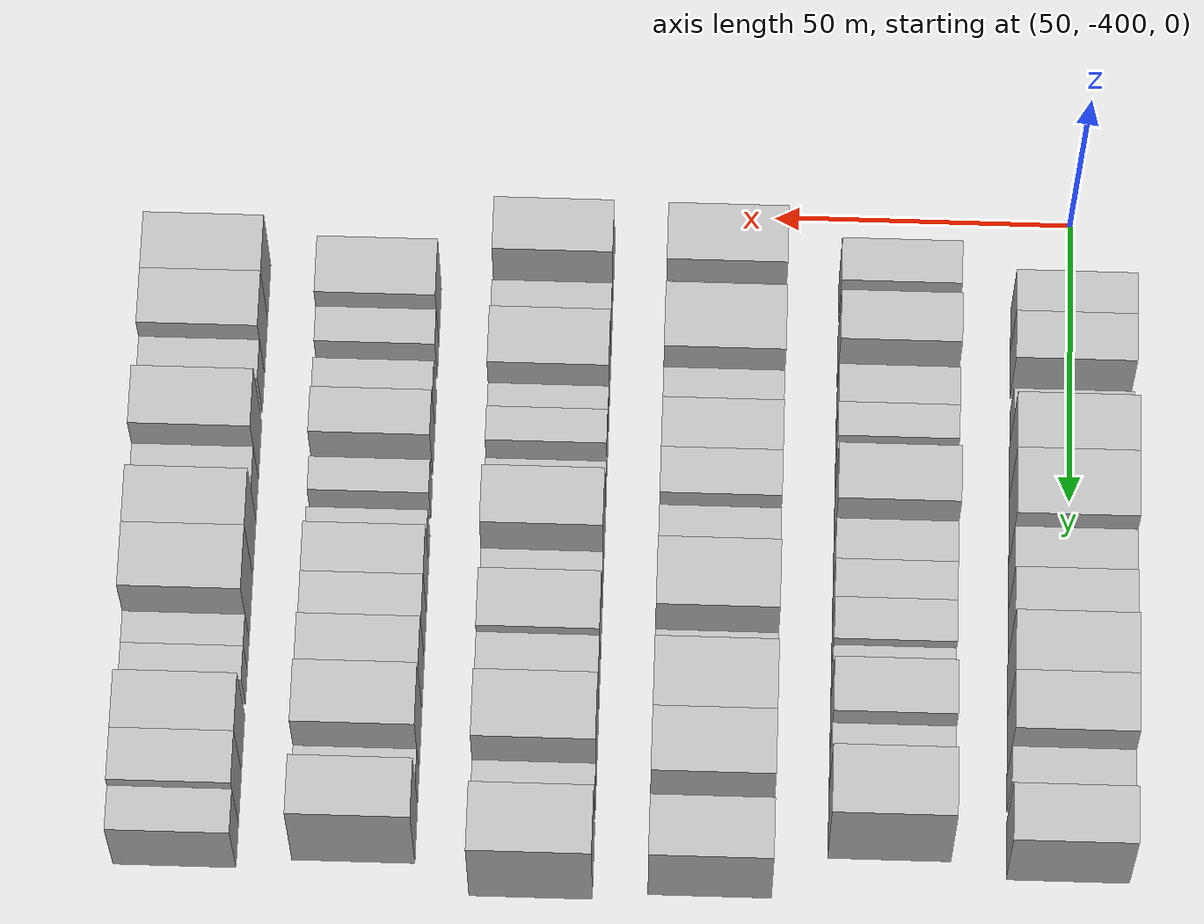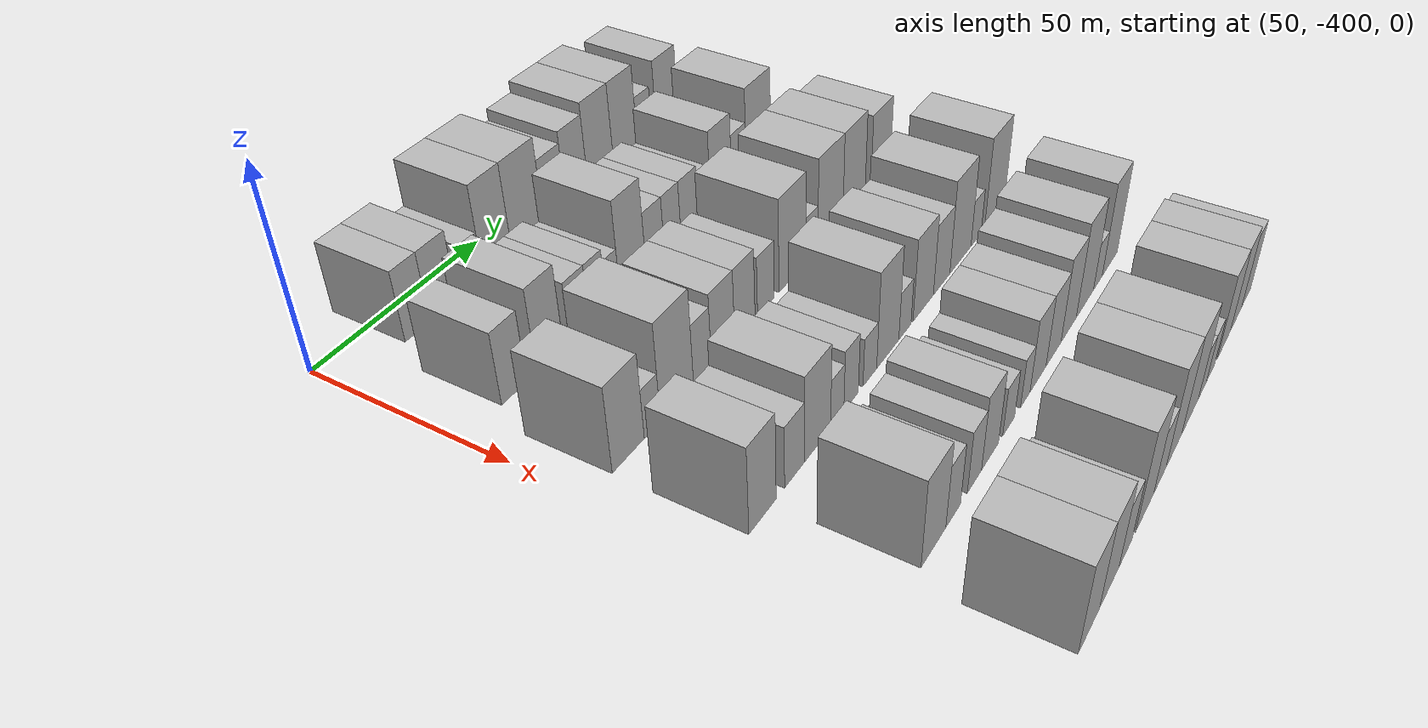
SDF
<sdf version="1.6">
 <world name="default">
  <model name="building_15">
   <static>1</static>
   <pose>50.0000 -380.3557 0 0.000000 0.000000 0.000000</pose>
   <link name="link">
    <pose>0 0 9.00 0 0 0</pose>
    <collision name="collision"><geometry><box><size>20.0000 7.3531 18.0000</size></box></geometry></collision>
    <visual name="visual">
     <cast_shadows>0</cast_shadows>
     <geometry><box><size>20.0000 7.3531 18.0000</size></box></geometry>
     <material>
      <script>
       <uri>model://HANNAS_wall/materials/scripts</uri>
       <uri>model://HANNAS_wall/materials/textures</uri>
       <name>vrc/HANNAS_wall</name>
      </script>
     </material>
    </visual>
   </link>
  </model>
  <model name="building_16">
   <static>1</static>
   <pose>50.0000 -372.4623 0 0.000000 0.000000 0.000000</pose>
   <link name="link">
    <pose>0 0 9.00 0 0 0</pose>
    <collision name="collision"><geometry><box><size>20.0000 8.4337 18.0000</size></box></geometry></collision>
    <visual name="visual">
     <cast_shadows>0</cast_shadows>
     <geometry><box><size>20.0000 8.4337 18.0000</size></box></geometry>
     <material>
      <script>
       <uri>model://HANNAS_wall/materials/scripts</uri>
       <uri>model://HANNAS_wall/materials/textures</uri>
       <name>vrc/HANNAS_wall</name>
      </script>
     </material>
    </visual>
   </link>
  </model>
  <model name="building_17">
   <static>1</static>
   <pose>50.0000 -362.4733 0 0.000000 0.000000 0.000000</pose>
   <link name="link">
    <pose>0 0 6.00 0 0 0</pose>
    <collision name="collision"><geometry><box><size>20.0000 5.5442 12.0000</size></box></geometry></collision>
    <visual name="visual">
     <cast_shadows>0</cast_shadows>
     <geometry><box><size>20.0000 5.5442 12.0000</size></box></geometry>
     <material>
      <script>
       <uri>model://HANNAS_wall/materials/scripts</uri>
       <uri>model://HANNAS_wall/materials/textures</uri>
       <name>vrc/HANNAS_wall</name>
      </script>
     </material>
    </visual>
   </link>
  </model>
  <model name="building_18">
   <static>1</static>
   <pose>50.0000 -354.8416 0 0.000000 0.000000 0.000000</pose>
   <link name="link">
    <pose>0 0 12.00 0 0 0</pose>
    <collision name="collision"><geometry><box><size>20.0000 9.7191 24.0000</size></box></geometry></collision>
    <visual name="visual">
     <cast_shadows>0</cast_shadows>
     <geometry><box><size>20.0000 9.7191 24.0000</size></box></geometry>
     <material>
      <script>
       <uri>model://HANNAS_wall/materials/scripts</uri>
       <uri>model://HANNAS_wall/materials/textures</uri>
       <name>vrc/HANNAS_wall</name>
      </script>
     </material>
    </visual>
   </link>
  </model>
  <model name="building_19">
   <static>1</static>
   <pose>50.0000 -344.2495 0 0.000000 0.000000 0.000000</pose>
   <link name="link">
    <pose>0 0 12.00 0 0 0</pose>
    <collision name="collision"><geometry><box><size>20.0000 11.4651 24.0000</size></box></geometry></collision>
    <visual name="visual">
     <cast_shadows>0</cast_shadows>
     <geometry><box><size>20.0000 11.4651 24.0000</size></box></geometry>
     <material>
      <script>
       <uri>model://HANNAS_wall/materials/scripts</uri>
       <uri>model://HANNAS_wall/materials/textures</uri>
       <name>vrc/HANNAS_wall</name>
      </script>
     </material>
    </visual>
   </link>
  </model>
  <model name="building_20">
   <static>1</static>
   <pose>50.0000 -334.4383 0 0.000000 0.000000 0.000000</pose>
   <link name="link">
    <pose>0 0 9.00 0 0 0</pose>
    <collision name="collision"><geometry><box><size>20.0000 8.1575 18.0000</size></box></geometry></collision>
    <visual name="visual">
     <cast_shadows>0</cast_shadows>
     <geometry><box><size>20.0000 8.1575 18.0000</size></box></geometry>
     <material>
      <script>
       <uri>model://HANNAS_wall/materials/scripts</uri>
       <uri>model://HANNAS_wall/materials/textures</uri>
       <name>vrc/HANNAS_wall</name>
      </script>
     </material>
    </visual>
   </link>
  </model>
  <model name="building_21">
   <static>1</static>
   <pose>50.0000 -326.1122 0 0.000000 0.000000 0.000000</pose>
   <link name="link">
    <pose>0 0 10.50 0 0 0</pose>
    <collision name="collision"><geometry><box><size>20.0000 8.4947 21.0000</size></box></geometry></collision>
    <visual name="visual">
     <cast_shadows>0</cast_shadows>
     <geometry><box><size>20.0000 8.4947 21.0000</size></box></geometry>
     <material>
      <script>
       <uri>model://HANNAS_wall/materials/scripts</uri>
       <uri>model://HANNAS_wall/materials/textures</uri>
       <name>vrc/HANNAS_wall</name>
      </script>
     </material>
    </visual>
   </link>
  </model>
  <model name="building_22">
   <static>1</static>
   <pose>50.0000 -316.7269 0 0.000000 0.000000 0.000000</pose>
   <link name="link">
    <pose>0 0 12.00 0 0 0</pose>
    <collision name="collision"><geometry><box><size>20.0000 10.2759 24.0000</size></box></geometry></collision>
    <visual name="visual">
     <cast_shadows>0</cast_shadows>
     <geometry><box><size>20.0000 10.2759 24.0000</size></box></geometry>
     <material>
      <script>
       <uri>model://HANNAS_wall/materials/scripts</uri>
       <uri>model://HANNAS_wall/materials/textures</uri>
       <name>vrc/HANNAS_wall</name>
      </script>
     </material>
    </visual>
   </link>
  </model>
  <model name="building_23">
   <static>1</static>
   <pose>50.0000 -306.6334 0 0.000000 0.000000 0.000000</pose>
   <link name="link">
    <pose>0 0 12.00 0 0 0</pose>
    <collision name="collision"><geometry><box><size>20.0000 9.9111 24.0000</size></box></geometry></collision>
    <visual name="visual">
     <cast_shadows>0</cast_shadows>
     <geometry><box><size>20.0000 9.9111 24.0000</size></box></geometry>
     <material>
      <script>
       <uri>model://HANNAS_wall/materials/scripts</uri>
       <uri>model://HANNAS_wall/materials/textures</uri>
       <name>vrc/HANNAS_wall</name>
      </script>
     </material>
    </visual>
   </link>
  </model>
  <model name="building_24">
   <static>1</static>
   <pose>50.0000 -298.5820 0 0.000000 0.000000 0.000000</pose>
   <link name="link">
    <pose>0 0 7.50 0 0 0</pose>
    <collision name="collision"><geometry><box><size>20.0000 6.1917 15.0000</size></box></geometry></collision>
    <visual name="visual">
     <cast_shadows>0</cast_shadows>
     <geometry><box><size>20.0000 6.1917 15.0000</size></box></geometry>
     <material>
      <script>
       <uri>model://HANNAS_wall/materials/scripts</uri>
       <uri>model://HANNAS_wall/materials/textures</uri>
       <name>vrc/HANNAS_wall</name>
      </script>
     </material>
    </visual>
   </link>
  </model>
  <model name="building_25">
   <static>1</static>
   <pose>50.0000 -288.6683 0 0.000000 0.000000 0.000000</pose>
   <link name="link">
    <pose>0 0 10.50 0 0 0</pose>
    <collision name="collision"><geometry><box><size>20.0000 9.6357 21.0000</size></box></geometry></collision>
    <visual name="visual">
     <cast_shadows>0</cast_shadows>
     <geometry><box><size>20.0000 9.6357 21.0000</size></box></geometry>
     <material>
      <script>
       <uri>model://HANNAS_wall/materials/scripts</uri>
       <uri>model://HANNAS_wall/materials/textures</uri>
       <name>vrc/HANNAS_wall</name>
      </script>
     </material>
    </visual>
   </link>
  </model>
  <model name="building_120">
   <static>1</static>
   <pose>79.0000 -385.0780 0 0.000000 0.000000 0.000000</pose>
   <link name="link">
    <pose>0 0 9.00 0 0 0</pose>
    <collision name="collision"><geometry><box><size>20.0000 7.6643 18.0000</size></box></geometry></collision>
    <visual name="visual">
     <cast_shadows>0</cast_shadows>
     <geometry><box><size>20.0000 7.6643 18.0000</size></box></geometry>
     <material>
      <script>
       <uri>model://HANNAS_wall/materials/scripts</uri>
       <uri>model://HANNAS_wall/materials/textures</uri>
       <name>vrc/HANNAS_wall</name>
      </script>
     </material>
    </visual>
   </link>
  </model>
  <model name="building_121">
   <static>1</static>
   <pose>79.0000 -373.8708 0 0.000000 0.000000 0.000000</pose>
   <link name="link">
    <pose>0 0 10.50 0 0 0</pose>
    <collision name="collision"><geometry><box><size>20.0000 8.7500 21.0000</size></box></geometry></collision>
    <visual name="visual">
     <cast_shadows>0</cast_shadows>
     <geometry><box><size>20.0000 8.7500 21.0000</size></box></geometry>
     <material>
      <script>
       <uri>model://HANNAS_wall/materials/scripts</uri>
       <uri>model://HANNAS_wall/materials/textures</uri>
       <name>vrc/HANNAS_wall</name>
      </script>
     </material>
    </visual>
   </link>
  </model>
  <model name="building_122">
   <static>1</static>
   <pose>79.0000 -364.1252 0 0.000000 0.000000 0.000000</pose>
   <link name="link">
    <pose>0 0 7.50 0 0 0</pose>
    <collision name="collision"><geometry><box><size>20.0000 6.7412 15.0000</size></box></geometry></collision>
    <visual name="visual">
     <cast_shadows>0</cast_shadows>
     <geometry><box><size>20.0000 6.7412 15.0000</size></box></geometry>
     <material>
      <script>
       <uri>model://HANNAS_wall/materials/scripts</uri>
       <uri>model://HANNAS_wall/materials/textures</uri>
       <name>vrc/HANNAS_wall</name>
      </script>
     </material>
    </visual>
   </link>
  </model>
  <model name="building_123">
   <static>1</static>
   <pose>79.0000 -357.7432 0 0.000000 0.000000 0.000000</pose>
   <link name="link">
    <pose>0 0 7.50 0 0 0</pose>
    <collision name="collision"><geometry><box><size>20.0000 6.0229 15.0000</size></box></geometry></collision>
    <visual name="visual">
     <cast_shadows>0</cast_shadows>
     <geometry><box><size>20.0000 6.0229 15.0000</size></box></geometry>
     <material>
      <script>
       <uri>model://HANNAS_wall/materials/scripts</uri>
       <uri>model://HANNAS_wall/materials/textures</uri>
       <name>vrc/HANNAS_wall</name>
      </script>
     </material>
    </visual>
   </link>
  </model>
  <model name="building_124">
   <static>1</static>
   <pose>79.0000 -352.3216 0 0.000000 0.000000 0.000000</pose>
   <link name="link">
    <pose>0 0 6.00 0 0 0</pose>
    <collision name="collision"><geometry><box><size>20.0000 4.8202 12.0000</size></box></geometry></collision>
    <visual name="visual">
     <cast_shadows>0</cast_shadows>
     <geometry><box><size>20.0000 4.8202 12.0000</size></box></geometry>
     <material>
      <script>
       <uri>model://HANNAS_wall/materials/scripts</uri>
       <uri>model://HANNAS_wall/materials/textures</uri>
       <name>vrc/HANNAS_wall</name>
      </script>
     </material>
    </visual>
   </link>
  </model>
  <model name="building_125">
   <static>1</static>
   <pose>79.0000 -345.0476 0 0.000000 0.000000 0.000000</pose>
   <link name="link">
    <pose>0 0 12.00 0 0 0</pose>
    <collision name="collision"><geometry><box><size>20.0000 9.7278 24.0000</size></box></geometry></collision>
    <visual name="visual">
     <cast_shadows>0</cast_shadows>
     <geometry><box><size>20.0000 9.7278 24.0000</size></box></geometry>
     <material>
      <script>
       <uri>model://HANNAS_wall/materials/scripts</uri>
       <uri>model://HANNAS_wall/materials/textures</uri>
       <name>vrc/HANNAS_wall</name>
      </script>
     </material>
    </visual>
   </link>
  </model>
  <model name="building_126">
   <static>1</static>
   <pose>79.0000 -336.6550 0 0.000000 0.000000 0.000000</pose>
   <link name="link">
    <pose>0 0 7.50 0 0 0</pose>
    <collision name="collision"><geometry><box><size>20.0000 7.0574 15.0000</size></box></geometry></collision>
    <visual name="visual">
     <cast_shadows>0</cast_shadows>
     <geometry><box><size>20.0000 7.0574 15.0000</size></box></geometry>
     <material>
      <script>
       <uri>model://HANNAS_wall/materials/scripts</uri>
       <uri>model://HANNAS_wall/materials/textures</uri>
       <name>vrc/HANNAS_wall</name>
      </script>
     </material>
    </visual>
   </link>
  </model>
  <model name="building_127">
   <static>1</static>
   <pose>79.0000 -329.8043 0 0.000000 0.000000 0.000000</pose>
   <link name="link">
    <pose>0 0 7.50 0 0 0</pose>
    <collision name="collision"><geometry><box><size>20.0000 6.6441 15.0000</size></box></geometry></collision>
    <visual name="visual">
     <cast_shadows>0</cast_shadows>
     <geometry><box><size>20.0000 6.6441 15.0000</size></box></geometry>
     <material>
      <script>
       <uri>model://HANNAS_wall/materials/scripts</uri>
       <uri>model://HANNAS_wall/materials/textures</uri>
       <name>vrc/HANNAS_wall</name>
      </script>
     </material>
    </visual>
   </link>
  </model>
  <model name="building_128">
   <static>1</static>
   <pose>79.0000 -322.8630 0 0.000000 0.000000 0.000000</pose>
   <link name="link">
    <pose>0 0 7.50 0 0 0</pose>
    <collision name="collision"><geometry><box><size>20.0000 7.2385 15.0000</size></box></geometry></collision>
    <visual name="visual">
     <cast_shadows>0</cast_shadows>
     <geometry><box><size>20.0000 7.2385 15.0000</size></box></geometry>
     <material>
      <script>
       <uri>model://HANNAS_wall/materials/scripts</uri>
       <uri>model://HANNAS_wall/materials/textures</uri>
       <name>vrc/HANNAS_wall</name>
      </script>
     </material>
    </visual>
   </link>
  </model>
  <model name="building_129">
   <static>1</static>
   <pose>79.0000 -316.6394 0 0.000000 0.000000 0.000000</pose>
   <link name="link">
    <pose>0 0 6.00 0 0 0</pose>
    <collision name="collision"><geometry><box><size>20.0000 5.2086 12.0000</size></box></geometry></collision>
    <visual name="visual">
     <cast_shadows>0</cast_shadows>
     <geometry><box><size>20.0000 5.2086 12.0000</size></box></geometry>
     <material>
      <script>
       <uri>model://HANNAS_wall/materials/scripts</uri>
       <uri>model://HANNAS_wall/materials/textures</uri>
       <name>vrc/HANNAS_wall</name>
      </script>
     </material>
    </visual>
   </link>
  </model>
  <model name="building_130">
   <static>1</static>
   <pose>79.0000 -309.4011 0 0.000000 0.000000 0.000000</pose>
   <link name="link">
    <pose>0 0 10.50 0 0 0</pose>
    <collision name="collision"><geometry><box><size>20.0000 9.2680 21.0000</size></box></geometry></collision>
    <visual name="visual">
     <cast_shadows>0</cast_shadows>
     <geometry><box><size>20.0000 9.2680 21.0000</size></box></geometry>
     <material>
      <script>
       <uri>model://HANNAS_wall/materials/scripts</uri>
       <uri>model://HANNAS_wall/materials/textures</uri>
       <name>vrc/HANNAS_wall</name>
      </script>
     </material>
    </visual>
   </link>
  </model>
  <model name="building_131">
   <static>1</static>
   <pose>79.0000 -301.4493 0 0.000000 0.000000 0.000000</pose>
   <link name="link">
    <pose>0 0 7.50 0 0 0</pose>
    <collision name="collision"><geometry><box><size>20.0000 6.6356 15.0000</size></box></geometry></collision>
    <visual name="visual">
     <cast_shadows>0</cast_shadows>
     <geometry><box><size>20.0000 6.6356 15.0000</size></box></geometry>
     <material>
      <script>
       <uri>model://HANNAS_wall/materials/scripts</uri>
       <uri>model://HANNAS_wall/materials/textures</uri>
       <name>vrc/HANNAS_wall</name>
      </script>
     </material>
    </visual>
   </link>
  </model>
  <model name="building_132">
   <static>1</static>
   <pose>79.0000 -292.3786 0 0.000000 0.000000 0.000000</pose>
   <link name="link">
    <pose>0 0 12.00 0 0 0</pose>
    <collision name="collision"><geometry><box><size>20.0000 11.5059 24.0000</size></box></geometry></collision>
    <visual name="visual">
     <cast_shadows>0</cast_shadows>
     <geometry><box><size>20.0000 11.5059 24.0000</size></box></geometry>
     <material>
      <script>
       <uri>model://HANNAS_wall/materials/scripts</uri>
       <uri>model://HANNAS_wall/materials/textures</uri>
       <name>vrc/HANNAS_wall</name>
      </script>
     </material>
    </visual>
   </link>
  </model>
  <model name="building_230">
   <static>1</static>
   <pose>108.0000 -387.9700 0 0.000000 0.000000 0.000000</pose>
   <link name="link">
    <pose>0 0 10.50 0 0 0</pose>
    <collision name="collision"><geometry><box><size>20.0000 10.1983 21.0000</size></box></geometry></collision>
    <visual name="visual">
     <cast_shadows>0</cast_shadows>
     <geometry><box><size>20.0000 10.1983 21.0000</size></box></geometry>
     <material>
      <script>
       <uri>model://HANNAS_wall/materials/scripts</uri>
       <uri>model://HANNAS_wall/materials/textures</uri>
       <name>vrc/HANNAS_wall</name>
      </script>
     </material>
    </visual>
   </link>
  </model>
  <model name="building_231">
   <static>1</static>
   <pose>108.0000 -380.1913 0 0.000000 0.000000 0.000000</pose>
   <link name="link">
    <pose>0 0 6.00 0 0 0</pose>
    <collision name="collision"><geometry><box><size>20.0000 5.3592 12.0000</size></box></geometry></collision>
    <visual name="visual">
     <cast_shadows>0</cast_shadows>
     <geometry><box><size>20.0000 5.3592 12.0000</size></box></geometry>
     <material>
      <script>
       <uri>model://HANNAS_wall/materials/scripts</uri>
       <uri>model://HANNAS_wall/materials/textures</uri>
       <name>vrc/HANNAS_wall</name>
      </script>
     </material>
    </visual>
   </link>
  </model>
  <model name="building_232">
   <static>1</static>
   <pose>108.0000 -371.7619 0 0.000000 0.000000 0.000000</pose>
   <link name="link">
    <pose>0 0 12.00 0 0 0</pose>
    <collision name="collision"><geometry><box><size>20.0000 11.4995 24.0000</size></box></geometry></collision>
    <visual name="visual">
     <cast_shadows>0</cast_shadows>
     <geometry><box><size>20.0000 11.4995 24.0000</size></box></geometry>
     <material>
      <script>
       <uri>model://HANNAS_wall/materials/scripts</uri>
       <uri>model://HANNAS_wall/materials/textures</uri>
       <name>vrc/HANNAS_wall</name>
      </script>
     </material>
    </visual>
   </link>
  </model>
  <model name="building_233">
   <static>1</static>
   <pose>108.0000 -362.7534 0 0.000000 0.000000 0.000000</pose>
   <link name="link">
    <pose>0 0 7.50 0 0 0</pose>
    <collision name="collision"><geometry><box><size>20.0000 6.5174 15.0000</size></box></geometry></collision>
    <visual name="visual">
     <cast_shadows>0</cast_shadows>
     <geometry><box><size>20.0000 6.5174 15.0000</size></box></geometry>
     <material>
      <script>
       <uri>model://HANNAS_wall/materials/scripts</uri>
       <uri>model://HANNAS_wall/materials/textures</uri>
       <name>vrc/HANNAS_wall</name>
      </script>
     </material>
    </visual>
   </link>
  </model>
  <model name="building_234">
   <static>1</static>
   <pose>108.0000 -355.0894 0 0.000000 0.000000 0.000000</pose>
   <link name="link">
    <pose>0 0 9.00 0 0 0</pose>
    <collision name="collision"><geometry><box><size>20.0000 8.8106 18.0000</size></box></geometry></collision>
    <visual name="visual">
     <cast_shadows>0</cast_shadows>
     <geometry><box><size>20.0000 8.8106 18.0000</size></box></geometry>
     <material>
      <script>
       <uri>model://HANNAS_wall/materials/scripts</uri>
       <uri>model://HANNAS_wall/materials/textures</uri>
       <name>vrc/HANNAS_wall</name>
      </script>
     </material>
    </visual>
   </link>
  </model>
  <model name="building_235">
   <static>1</static>
   <pose>108.0000 -346.6576 0 0.000000 0.000000 0.000000</pose>
   <link name="link">
    <pose>0 0 9.00 0 0 0</pose>
    <collision name="collision"><geometry><box><size>20.0000 8.0529 18.0000</size></box></geometry></collision>
    <visual name="visual">
     <cast_shadows>0</cast_shadows>
     <geometry><box><size>20.0000 8.0529 18.0000</size></box></geometry>
     <material>
      <script>
       <uri>model://HANNAS_wall/materials/scripts</uri>
       <uri>model://HANNAS_wall/materials/textures</uri>
       <name>vrc/HANNAS_wall</name>
      </script>
     </material>
    </visual>
   </link>
  </model>
  <model name="building_236">
   <static>1</static>
   <pose>108.0000 -338.1753 0 0.000000 0.000000 0.000000</pose>
   <link name="link">
    <pose>0 0 7.50 0 0 0</pose>
    <collision name="collision"><geometry><box><size>20.0000 6.9116 15.0000</size></box></geometry></collision>
    <visual name="visual">
     <cast_shadows>0</cast_shadows>
     <geometry><box><size>20.0000 6.9116 15.0000</size></box></geometry>
     <material>
      <script>
       <uri>model://HANNAS_wall/materials/scripts</uri>
       <uri>model://HANNAS_wall/materials/textures</uri>
       <name>vrc/HANNAS_wall</name>
      </script>
     </material>
    </visual>
   </link>
  </model>
  <model name="building_237">
   <static>1</static>
   <pose>108.0000 -326.8583 0 0.000000 0.000000 0.000000</pose>
   <link name="link">
    <pose>0 0 12.00 0 0 0</pose>
    <collision name="collision"><geometry><box><size>20.0000 11.7225 24.0000</size></box></geometry></collision>
    <visual name="visual">
     <cast_shadows>0</cast_shadows>
     <geometry><box><size>20.0000 11.7225 24.0000</size></box></geometry>
     <material>
      <script>
       <uri>model://HANNAS_wall/materials/scripts</uri>
       <uri>model://HANNAS_wall/materials/textures</uri>
       <name>vrc/HANNAS_wall</name>
      </script>
     </material>
    </visual>
   </link>
  </model>
  <model name="building_238">
   <static>1</static>
   <pose>108.0000 -318.2934 0 0.000000 0.000000 0.000000</pose>
   <link name="link">
    <pose>0 0 6.00 0 0 0</pose>
    <collision name="collision"><geometry><box><size>20.0000 5.4072 12.0000</size></box></geometry></collision>
    <visual name="visual">
     <cast_shadows>0</cast_shadows>
     <geometry><box><size>20.0000 5.4072 12.0000</size></box></geometry>
     <material>
      <script>
       <uri>model://HANNAS_wall/materials/scripts</uri>
       <uri>model://HANNAS_wall/materials/textures</uri>
       <name>vrc/HANNAS_wall</name>
      </script>
     </material>
    </visual>
   </link>
  </model>
  <model name="building_239">
   <static>1</static>
   <pose>108.0000 -309.6617 0 0.000000 0.000000 0.000000</pose>
   <link name="link">
    <pose>0 0 12.00 0 0 0</pose>
    <collision name="collision"><geometry><box><size>20.0000 11.8563 24.0000</size></box></geometry></collision>
    <visual name="visual">
     <cast_shadows>0</cast_shadows>
     <geometry><box><size>20.0000 11.8563 24.0000</size></box></geometry>
     <material>
      <script>
       <uri>model://HANNAS_wall/materials/scripts</uri>
       <uri>model://HANNAS_wall/materials/textures</uri>
       <name>vrc/HANNAS_wall</name>
      </script>
     </material>
    </visual>
   </link>
  </model>
  <model name="building_240">
   <static>1</static>
   <pose>108.0000 -298.2526 0 0.000000 0.000000 0.000000</pose>
   <link name="link">
    <pose>0 0 12.00 0 0 0</pose>
    <collision name="collision"><geometry><box><size>20.0000 10.9618 24.0000</size></box></geometry></collision>
    <visual name="visual">
     <cast_shadows>0</cast_shadows>
     <geometry><box><size>20.0000 10.9618 24.0000</size></box></geometry>
     <material>
      <script>
       <uri>model://HANNAS_wall/materials/scripts</uri>
       <uri>model://HANNAS_wall/materials/textures</uri>
       <name>vrc/HANNAS_wall</name>
      </script>
     </material>
    </visual>
   </link>
  </model>
  <model name="building_241">
   <static>1</static>
   <pose>108.0000 -284.6630 0 0.000000 0.000000 0.000000</pose>
   <link name="link">
    <pose>0 0 10.50 0 0 0</pose>
    <collision name="collision"><geometry><box><size>20.0000 10.2174 21.0000</size></box></geometry></collision>
    <visual name="visual">
     <cast_shadows>0</cast_shadows>
     <geometry><box><size>20.0000 10.2174 21.0000</size></box></geometry>
     <material>
      <script>
       <uri>model://HANNAS_wall/materials/scripts</uri>
       <uri>model://HANNAS_wall/materials/textures</uri>
       <name>vrc/HANNAS_wall</name>
      </script>
     </material>
    </visual>
   </link>
  </model>
  <model name="building_349">
   <static>1</static>
   <pose>137.0000 -388.5139 0 0.000000 0.000000 0.000000</pose>
   <link name="link">
    <pose>0 0 10.50 0 0 0</pose>
    <collision name="collision"><geometry><box><size>20.0000 9.4032 21.0000</size></box></geometry></collision>
    <visual name="visual">
     <cast_shadows>0</cast_shadows>
     <geometry><box><size>20.0000 9.4032 21.0000</size></box></geometry>
     <material>
      <script>
       <uri>model://HANNAS_wall/materials/scripts</uri>
       <uri>model://HANNAS_wall/materials/textures</uri>
       <name>vrc/HANNAS_wall</name>
      </script>
     </material>
    </visual>
   </link>
  </model>
  <model name="building_350">
   <static>1</static>
   <pose>137.0000 -377.1703 0 0.000000 0.000000 0.000000</pose>
   <link name="link">
    <pose>0 0 7.50 0 0 0</pose>
    <collision name="collision"><geometry><box><size>20.0000 7.2841 15.0000</size></box></geometry></collision>
    <visual name="visual">
     <cast_shadows>0</cast_shadows>
     <geometry><box><size>20.0000 7.2841 15.0000</size></box></geometry>
     <material>
      <script>
       <uri>model://HANNAS_wall/materials/scripts</uri>
       <uri>model://HANNAS_wall/materials/textures</uri>
       <name>vrc/HANNAS_wall</name>
      </script>
     </material>
    </visual>
   </link>
  </model>
  <model name="building_351">
   <static>1</static>
   <pose>137.0000 -368.5234 0 0.000000 0.000000 0.000000</pose>
   <link name="link">
    <pose>0 0 10.50 0 0 0</pose>
    <collision name="collision"><geometry><box><size>20.0000 10.0097 21.0000</size></box></geometry></collision>
    <visual name="visual">
     <cast_shadows>0</cast_shadows>
     <geometry><box><size>20.0000 10.0097 21.0000</size></box></geometry>
     <material>
      <script>
       <uri>model://HANNAS_wall/materials/scripts</uri>
       <uri>model://HANNAS_wall/materials/textures</uri>
       <name>vrc/HANNAS_wall</name>
      </script>
     </material>
    </visual>
   </link>
  </model>
  <model name="building_352">
   <static>1</static>
   <pose>137.0000 -360.8387 0 0.000000 0.000000 0.000000</pose>
   <link name="link">
    <pose>0 0 6.00 0 0 0</pose>
    <collision name="collision"><geometry><box><size>20.0000 5.3598 12.0000</size></box></geometry></collision>
    <visual name="visual">
     <cast_shadows>0</cast_shadows>
     <geometry><box><size>20.0000 5.3598 12.0000</size></box></geometry>
     <material>
      <script>
       <uri>model://HANNAS_wall/materials/scripts</uri>
       <uri>model://HANNAS_wall/materials/textures</uri>
       <name>vrc/HANNAS_wall</name>
      </script>
     </material>
    </visual>
   </link>
  </model>
  <model name="building_353">
   <static>1</static>
   <pose>137.0000 -355.1515 0 0.000000 0.000000 0.000000</pose>
   <link name="link">
    <pose>0 0 7.50 0 0 0</pose>
    <collision name="collision"><geometry><box><size>20.0000 6.0145 15.0000</size></box></geometry></collision>
    <visual name="visual">
     <cast_shadows>0</cast_shadows>
     <geometry><box><size>20.0000 6.0145 15.0000</size></box></geometry>
     <material>
      <script>
       <uri>model://HANNAS_wall/materials/scripts</uri>
       <uri>model://HANNAS_wall/materials/textures</uri>
       <name>vrc/HANNAS_wall</name>
      </script>
     </material>
    </visual>
   </link>
  </model>
  <model name="building_354">
   <static>1</static>
   <pose>137.0000 -347.1874 0 0.000000 0.000000 0.000000</pose>
   <link name="link">
    <pose>0 0 6.00 0 0 0</pose>
    <collision name="collision"><geometry><box><size>20.0000 5.9138 12.0000</size></box></geometry></collision>
    <visual name="visual">
     <cast_shadows>0</cast_shadows>
     <geometry><box><size>20.0000 5.9138 12.0000</size></box></geometry>
     <material>
      <script>
       <uri>model://HANNAS_wall/materials/scripts</uri>
       <uri>model://HANNAS_wall/materials/textures</uri>
       <name>vrc/HANNAS_wall</name>
      </script>
     </material>
    </visual>
   </link>
  </model>
  <model name="building_355">
   <static>1</static>
   <pose>137.0000 -339.2268 0 0.000000 0.000000 0.000000</pose>
   <link name="link">
    <pose>0 0 12.00 0 0 0</pose>
    <collision name="collision"><geometry><box><size>20.0000 10.0074 24.0000</size></box></geometry></collision>
    <visual name="visual">
     <cast_shadows>0</cast_shadows>
     <geometry><box><size>20.0000 10.0074 24.0000</size></box></geometry>
     <material>
      <script>
       <uri>model://HANNAS_wall/materials/scripts</uri>
       <uri>model://HANNAS_wall/materials/textures</uri>
       <name>vrc/HANNAS_wall</name>
      </script>
     </material>
    </visual>
   </link>
  </model>
  <model name="building_356">
   <static>1</static>
   <pose>137.0000 -331.3594 0 0.000000 0.000000 0.000000</pose>
   <link name="link">
    <pose>0 0 6.00 0 0 0</pose>
    <collision name="collision"><geometry><box><size>20.0000 5.7274 12.0000</size></box></geometry></collision>
    <visual name="visual">
     <cast_shadows>0</cast_shadows>
     <geometry><box><size>20.0000 5.7274 12.0000</size></box></geometry>
     <material>
      <script>
       <uri>model://HANNAS_wall/materials/scripts</uri>
       <uri>model://HANNAS_wall/materials/textures</uri>
       <name>vrc/HANNAS_wall</name>
      </script>
     </material>
    </visual>
   </link>
  </model>
  <model name="building_357">
   <static>1</static>
   <pose>137.0000 -322.5025 0 0.000000 0.000000 0.000000</pose>
   <link name="link">
    <pose>0 0 10.50 0 0 0</pose>
    <collision name="collision"><geometry><box><size>20.0000 9.9866 21.0000</size></box></geometry></collision>
    <visual name="visual">
     <cast_shadows>0</cast_shadows>
     <geometry><box><size>20.0000 9.9866 21.0000</size></box></geometry>
     <material>
      <script>
       <uri>model://HANNAS_wall/materials/scripts</uri>
       <uri>model://HANNAS_wall/materials/textures</uri>
       <name>vrc/HANNAS_wall</name>
      </script>
     </material>
    </visual>
   </link>
  </model>
  <model name="building_358">
   <static>1</static>
   <pose>137.0000 -313.2778 0 0.000000 0.000000 0.000000</pose>
   <link name="link">
    <pose>0 0 9.00 0 0 0</pose>
    <collision name="collision"><geometry><box><size>20.0000 8.4627 18.0000</size></box></geometry></collision>
    <visual name="visual">
     <cast_shadows>0</cast_shadows>
     <geometry><box><size>20.0000 8.4627 18.0000</size></box></geometry>
     <material>
      <script>
       <uri>model://HANNAS_wall/materials/scripts</uri>
       <uri>model://HANNAS_wall/materials/textures</uri>
       <name>vrc/HANNAS_wall</name>
      </script>
     </material>
    </visual>
   </link>
  </model>
  <model name="building_359">
   <static>1</static>
   <pose>137.0000 -303.3574 0 0.000000 0.000000 0.000000</pose>
   <link name="link">
    <pose>0 0 12.00 0 0 0</pose>
    <collision name="collision"><geometry><box><size>20.0000 11.3781 24.0000</size></box></geometry></collision>
    <visual name="visual">
     <cast_shadows>0</cast_shadows>
     <geometry><box><size>20.0000 11.3781 24.0000</size></box></geometry>
     <material>
      <script>
       <uri>model://HANNAS_wall/materials/scripts</uri>
       <uri>model://HANNAS_wall/materials/textures</uri>
       <name>vrc/HANNAS_wall</name>
      </script>
     </material>
    </visual>
   </link>
  </model>
  <model name="building_360">
   <static>1</static>
   <pose>137.0000 -294.8289 0 0.000000 0.000000 0.000000</pose>
   <link name="link">
    <pose>0 0 6.00 0 0 0</pose>
    <collision name="collision"><geometry><box><size>20.0000 5.6789 12.0000</size></box></geometry></collision>
    <visual name="visual">
     <cast_shadows>0</cast_shadows>
     <geometry><box><size>20.0000 5.6789 12.0000</size></box></geometry>
     <material>
      <script>
       <uri>model://HANNAS_wall/materials/scripts</uri>
       <uri>model://HANNAS_wall/materials/textures</uri>
       <name>vrc/HANNAS_wall</name>
      </script>
     </material>
    </visual>
   </link>
  </model>
  <model name="building_361">
   <static>1</static>
   <pose>137.0000 -284.2296 0 0.000000 0.000000 0.000000</pose>
   <link name="link">
    <pose>0 0 12.00 0 0 0</pose>
    <collision name="collision"><geometry><box><size>20.0000 11.5197 24.0000</size></box></geometry></collision>
    <visual name="visual">
     <cast_shadows>0</cast_shadows>
     <geometry><box><size>20.0000 11.5197 24.0000</size></box></geometry>
     <material>
      <script>
       <uri>model://HANNAS_wall/materials/scripts</uri>
       <uri>model://HANNAS_wall/materials/textures</uri>
       <name>vrc/HANNAS_wall</name>
      </script>
     </material>
    </visual>
   </link>
  </model>
  <model name="building_460">
   <static>1</static>
   <pose>166.0000 -380.1838 0 0.000000 0.000000 0.000000</pose>
   <link name="link">
    <pose>0 0 10.50 0 0 0</pose>
    <collision name="collision"><geometry><box><size>20.0000 10.0706 21.0000</size></box></geometry></collision>
    <visual name="visual">
     <cast_shadows>0</cast_shadows>
     <geometry><box><size>20.0000 10.0706 21.0000</size></box></geometry>
     <material>
      <script>
       <uri>model://HANNAS_wall/materials/scripts</uri>
       <uri>model://HANNAS_wall/materials/textures</uri>
       <name>vrc/HANNAS_wall</name>
      </script>
     </material>
    </visual>
   </link>
  </model>
  <model name="building_461">
   <static>1</static>
   <pose>166.0000 -372.0212 0 0.000000 0.000000 0.000000</pose>
   <link name="link">
    <pose>0 0 7.50 0 0 0</pose>
    <collision name="collision"><geometry><box><size>20.0000 6.2547 15.0000</size></box></geometry></collision>
    <visual name="visual">
     <cast_shadows>0</cast_shadows>
     <geometry><box><size>20.0000 6.2547 15.0000</size></box></geometry>
     <material>
      <script>
       <uri>model://HANNAS_wall/materials/scripts</uri>
       <uri>model://HANNAS_wall/materials/textures</uri>
       <name>vrc/HANNAS_wall</name>
      </script>
     </material>
    </visual>
   </link>
  </model>
  <model name="building_462">
   <static>1</static>
   <pose>166.0000 -362.7020 0 0.000000 0.000000 0.000000</pose>
   <link name="link">
    <pose>0 0 7.50 0 0 0</pose>
    <collision name="collision"><geometry><box><size>20.0000 6.3836 15.0000</size></box></geometry></collision>
    <visual name="visual">
     <cast_shadows>0</cast_shadows>
     <geometry><box><size>20.0000 6.3836 15.0000</size></box></geometry>
     <material>
      <script>
       <uri>model://HANNAS_wall/materials/scripts</uri>
       <uri>model://HANNAS_wall/materials/textures</uri>
       <name>vrc/HANNAS_wall</name>
      </script>
     </material>
    </visual>
   </link>
  </model>
  <model name="building_463">
   <static>1</static>
   <pose>166.0000 -355.5205 0 0.000000 0.000000 0.000000</pose>
   <link name="link">
    <pose>0 0 9.00 0 0 0</pose>
    <collision name="collision"><geometry><box><size>20.0000 7.9795 18.0000</size></box></geometry></collision>
    <visual name="visual">
     <cast_shadows>0</cast_shadows>
     <geometry><box><size>20.0000 7.9795 18.0000</size></box></geometry>
     <material>
      <script>
       <uri>model://HANNAS_wall/materials/scripts</uri>
       <uri>model://HANNAS_wall/materials/textures</uri>
       <name>vrc/HANNAS_wall</name>
      </script>
     </material>
    </visual>
   </link>
  </model>
  <model name="building_464">
   <static>1</static>
   <pose>166.0000 -346.5850 0 0.000000 0.000000 0.000000</pose>
   <link name="link">
    <pose>0 0 6.00 0 0 0</pose>
    <collision name="collision"><geometry><box><size>20.0000 5.8914 12.0000</size></box></geometry></collision>
    <visual name="visual">
     <cast_shadows>0</cast_shadows>
     <geometry><box><size>20.0000 5.8914 12.0000</size></box></geometry>
     <material>
      <script>
       <uri>model://HANNAS_wall/materials/scripts</uri>
       <uri>model://HANNAS_wall/materials/textures</uri>
       <name>vrc/HANNAS_wall</name>
      </script>
     </material>
    </visual>
   </link>
  </model>
  <model name="building_465">
   <static>1</static>
   <pose>166.0000 -338.1837 0 0.000000 0.000000 0.000000</pose>
   <link name="link">
    <pose>0 0 6.00 0 0 0</pose>
    <collision name="collision"><geometry><box><size>20.0000 4.9114 12.0000</size></box></geometry></collision>
    <visual name="visual">
     <cast_shadows>0</cast_shadows>
     <geometry><box><size>20.0000 4.9114 12.0000</size></box></geometry>
     <material>
      <script>
       <uri>model://HANNAS_wall/materials/scripts</uri>
       <uri>model://HANNAS_wall/materials/textures</uri>
       <name>vrc/HANNAS_wall</name>
      </script>
     </material>
    </visual>
   </link>
  </model>
  <model name="building_466">
   <static>1</static>
   <pose>166.0000 -331.4417 0 0.000000 0.000000 0.000000</pose>
   <link name="link">
    <pose>0 0 9.00 0 0 0</pose>
    <collision name="collision"><geometry><box><size>20.0000 8.5725 18.0000</size></box></geometry></collision>
    <visual name="visual">
     <cast_shadows>0</cast_shadows>
     <geometry><box><size>20.0000 8.5725 18.0000</size></box></geometry>
     <material>
      <script>
       <uri>model://HANNAS_wall/materials/scripts</uri>
       <uri>model://HANNAS_wall/materials/textures</uri>
       <name>vrc/HANNAS_wall</name>
      </script>
     </material>
    </visual>
   </link>
  </model>
  <model name="building_467">
   <static>1</static>
   <pose>166.0000 -322.9650 0 0.000000 0.000000 0.000000</pose>
   <link name="link">
    <pose>0 0 9.00 0 0 0</pose>
    <collision name="collision"><geometry><box><size>20.0000 8.3810 18.0000</size></box></geometry></collision>
    <visual name="visual">
     <cast_shadows>0</cast_shadows>
     <geometry><box><size>20.0000 8.3810 18.0000</size></box></geometry>
     <material>
      <script>
       <uri>model://HANNAS_wall/materials/scripts</uri>
       <uri>model://HANNAS_wall/materials/textures</uri>
       <name>vrc/HANNAS_wall</name>
      </script>
     </material>
    </visual>
   </link>
  </model>
  <model name="building_468">
   <static>1</static>
   <pose>166.0000 -314.2784 0 0.000000 0.000000 0.000000</pose>
   <link name="link">
    <pose>0 0 10.50 0 0 0</pose>
    <collision name="collision"><geometry><box><size>20.0000 8.9921 21.0000</size></box></geometry></collision>
    <visual name="visual">
     <cast_shadows>0</cast_shadows>
     <geometry><box><size>20.0000 8.9921 21.0000</size></box></geometry>
     <material>
      <script>
       <uri>model://HANNAS_wall/materials/scripts</uri>
       <uri>model://HANNAS_wall/materials/textures</uri>
       <name>vrc/HANNAS_wall</name>
      </script>
     </material>
    </visual>
   </link>
  </model>
  <model name="building_469">
   <static>1</static>
   <pose>166.0000 -304.5092 0 0.000000 0.000000 0.000000</pose>
   <link name="link">
    <pose>0 0 12.00 0 0 0</pose>
    <collision name="collision"><geometry><box><size>20.0000 10.5463 24.0000</size></box></geometry></collision>
    <visual name="visual">
     <cast_shadows>0</cast_shadows>
     <geometry><box><size>20.0000 10.5463 24.0000</size></box></geometry>
     <material>
      <script>
       <uri>model://HANNAS_wall/materials/scripts</uri>
       <uri>model://HANNAS_wall/materials/textures</uri>
       <name>vrc/HANNAS_wall</name>
      </script>
     </material>
    </visual>
   </link>
  </model>
  <model name="building_470">
   <static>1</static>
   <pose>166.0000 -296.4252 0 0.000000 0.000000 0.000000</pose>
   <link name="link">
    <pose>0 0 6.00 0 0 0</pose>
    <collision name="collision"><geometry><box><size>20.0000 5.6218 12.0000</size></box></geometry></collision>
    <visual name="visual">
     <cast_shadows>0</cast_shadows>
     <geometry><box><size>20.0000 5.6218 12.0000</size></box></geometry>
     <material>
      <script>
       <uri>model://HANNAS_wall/materials/scripts</uri>
       <uri>model://HANNAS_wall/materials/textures</uri>
       <name>vrc/HANNAS_wall</name>
      </script>
     </material>
    </visual>
   </link>
  </model>
  <model name="building_471">
   <static>1</static>
   <pose>166.0000 -288.6391 0 0.000000 0.000000 0.000000</pose>
   <link name="link">
    <pose>0 0 12.00 0 0 0</pose>
    <collision name="collision"><geometry><box><size>20.0000 9.9503 24.0000</size></box></geometry></collision>
    <visual name="visual">
     <cast_shadows>0</cast_shadows>
     <geometry><box><size>20.0000 9.9503 24.0000</size></box></geometry>
     <material>
      <script>
       <uri>model://HANNAS_wall/materials/scripts</uri>
       <uri>model://HANNAS_wall/materials/textures</uri>
       <name>vrc/HANNAS_wall</name>
      </script>
     </material>
    </visual>
   </link>
  </model>
  <model name="building_570">
   <static>1</static>
   <pose>195.0000 -383.6419 0 0.000000 0.000000 0.000000</pose>
   <link name="link">
    <pose>0 0 10.50 0 0 0</pose>
    <collision name="collision"><geometry><box><size>20.0000 10.0666 21.0000</size></box></geometry></collision>
    <visual name="visual">
     <cast_shadows>0</cast_shadows>
     <geometry><box><size>20.0000 10.0666 21.0000</size></box></geometry>
     <material>
      <script>
       <uri>model://HANNAS_wall/materials/scripts</uri>
       <uri>model://HANNAS_wall/materials/textures</uri>
       <name>vrc/HANNAS_wall</name>
      </script>
     </material>
    </visual>
   </link>
  </model>
  <model name="building_571">
   <static>1</static>
   <pose>195.0000 -373.7036 0 0.000000 0.000000 0.000000</pose>
   <link name="link">
    <pose>0 0 10.50 0 0 0</pose>
    <collision name="collision"><geometry><box><size>20.0000 9.8100 21.0000</size></box></geometry></collision>
    <visual name="visual">
     <cast_shadows>0</cast_shadows>
     <geometry><box><size>20.0000 9.8100 21.0000</size></box></geometry>
     <material>
      <script>
       <uri>model://HANNAS_wall/materials/scripts</uri>
       <uri>model://HANNAS_wall/materials/textures</uri>
       <name>vrc/HANNAS_wall</name>
      </script>
     </material>
    </visual>
   </link>
  </model>
  <model name="building_572">
   <static>1</static>
   <pose>195.0000 -365.3409 0 0.000000 0.000000 0.000000</pose>
   <link name="link">
    <pose>0 0 7.50 0 0 0</pose>
    <collision name="collision"><geometry><box><size>20.0000 6.9154 15.0000</size></box></geometry></collision>
    <visual name="visual">
     <cast_shadows>0</cast_shadows>
     <geometry><box><size>20.0000 6.9154 15.0000</size></box></geometry>
     <material>
      <script>
       <uri>model://HANNAS_wall/materials/scripts</uri>
       <uri>model://HANNAS_wall/materials/textures</uri>
       <name>vrc/HANNAS_wall</name>
      </script>
     </material>
    </visual>
   </link>
  </model>
  <model name="building_573">
   <static>1</static>
   <pose>195.0000 -354.8117 0 0.000000 0.000000 0.000000</pose>
   <link name="link">
    <pose>0 0 12.00 0 0 0</pose>
    <collision name="collision"><geometry><box><size>20.0000 10.1431 24.0000</size></box></geometry></collision>
    <visual name="visual">
     <cast_shadows>0</cast_shadows>
     <geometry><box><size>20.0000 10.1431 24.0000</size></box></geometry>
     <material>
      <script>
       <uri>model://HANNAS_wall/materials/scripts</uri>
       <uri>model://HANNAS_wall/materials/textures</uri>
       <name>vrc/HANNAS_wall</name>
      </script>
     </material>
    </visual>
   </link>
  </model>
  <model name="building_574">
   <static>1</static>
   <pose>195.0000 -346.0430 0 0.000000 0.000000 0.000000</pose>
   <link name="link">
    <pose>0 0 7.50 0 0 0</pose>
    <collision name="collision"><geometry><box><size>20.0000 7.3943 15.0000</size></box></geometry></collision>
    <visual name="visual">
     <cast_shadows>0</cast_shadows>
     <geometry><box><size>20.0000 7.3943 15.0000</size></box></geometry>
     <material>
      <script>
       <uri>model://HANNAS_wall/materials/scripts</uri>
       <uri>model://HANNAS_wall/materials/textures</uri>
       <name>vrc/HANNAS_wall</name>
      </script>
     </material>
    </visual>
   </link>
  </model>
  <model name="building_575">
   <static>1</static>
   <pose>195.0000 -337.4293 0 0.000000 0.000000 0.000000</pose>
   <link name="link">
    <pose>0 0 12.00 0 0 0</pose>
    <collision name="collision"><geometry><box><size>20.0000 9.8331 24.0000</size></box></geometry></collision>
    <visual name="visual">
     <cast_shadows>0</cast_shadows>
     <geometry><box><size>20.0000 9.8331 24.0000</size></box></geometry>
     <material>
      <script>
       <uri>model://HANNAS_wall/materials/scripts</uri>
       <uri>model://HANNAS_wall/materials/textures</uri>
       <name>vrc/HANNAS_wall</name>
      </script>
     </material>
    </visual>
   </link>
  </model>
  <model name="building_576">
   <static>1</static>
   <pose>195.0000 -326.9992 0 0.000000 0.000000 0.000000</pose>
   <link name="link">
    <pose>0 0 12.00 0 0 0</pose>
    <collision name="collision"><geometry><box><size>20.0000 11.0272 24.0000</size></box></geometry></collision>
    <visual name="visual">
     <cast_shadows>0</cast_shadows>
     <geometry><box><size>20.0000 11.0272 24.0000</size></box></geometry>
     <material>
      <script>
       <uri>model://HANNAS_wall/materials/scripts</uri>
       <uri>model://HANNAS_wall/materials/textures</uri>
       <name>vrc/HANNAS_wall</name>
      </script>
     </material>
    </visual>
   </link>
  </model>
  <model name="building_577">
   <static>1</static>
   <pose>195.0000 -318.7599 0 0.000000 0.000000 0.000000</pose>
   <link name="link">
    <pose>0 0 6.00 0 0 0</pose>
    <collision name="collision"><geometry><box><size>20.0000 5.4513 12.0000</size></box></geometry></collision>
    <visual name="visual">
     <cast_shadows>0</cast_shadows>
     <geometry><box><size>20.0000 5.4513 12.0000</size></box></geometry>
     <material>
      <script>
       <uri>model://HANNAS_wall/materials/scripts</uri>
       <uri>model://HANNAS_wall/materials/textures</uri>
       <name>vrc/HANNAS_wall</name>
      </script>
     </material>
    </visual>
   </link>
  </model>
  <model name="building_578">
   <static>1</static>
   <pose>195.0000 -313.1029 0 0.000000 0.000000 0.000000</pose>
   <link name="link">
    <pose>0 0 6.00 0 0 0</pose>
    <collision name="collision"><geometry><box><size>20.0000 5.8627 12.0000</size></box></geometry></collision>
    <visual name="visual">
     <cast_shadows>0</cast_shadows>
     <geometry><box><size>20.0000 5.8627 12.0000</size></box></geometry>
     <material>
      <script>
       <uri>model://HANNAS_wall/materials/scripts</uri>
       <uri>model://HANNAS_wall/materials/textures</uri>
       <name>vrc/HANNAS_wall</name>
      </script>
     </material>
    </visual>
   </link>
  </model>
  <model name="building_579">
   <static>1</static>
   <pose>195.0000 -303.2540 0 0.000000 0.000000 0.000000</pose>
   <link name="link">
    <pose>0 0 10.50 0 0 0</pose>
    <collision name="collision"><geometry><box><size>20.0000 9.8351 21.0000</size></box></geometry></collision>
    <visual name="visual">
     <cast_shadows>0</cast_shadows>
     <geometry><box><size>20.0000 9.8351 21.0000</size></box></geometry>
     <material>
      <script>
       <uri>model://HANNAS_wall/materials/scripts</uri>
       <uri>model://HANNAS_wall/materials/textures</uri>
       <name>vrc/HANNAS_wall</name>
      </script>
     </material>
    </visual>
   </link>
  </model>
  <model name="building_580">
   <static>1</static>
   <pose>195.0000 -293.9298 0 0.000000 0.000000 0.000000</pose>
   <link name="link">
    <pose>0 0 10.50 0 0 0</pose>
    <collision name="collision"><geometry><box><size>20.0000 8.8134 21.0000</size></box></geometry></collision>
    <visual name="visual">
     <cast_shadows>0</cast_shadows>
     <geometry><box><size>20.0000 8.8134 21.0000</size></box></geometry>
     <material>
      <script>
       <uri>model://HANNAS_wall/materials/scripts</uri>
       <uri>model://HANNAS_wall/materials/textures</uri>
       <name>vrc/HANNAS_wall</name>
      </script>
     </material>
    </visual>
   </link>
  </model>
  <model name="building_581">
   <static>1</static>
   <pose>195.0000 -285.7906 0 0.000000 0.000000 0.000000</pose>
   <link name="link">
    <pose>0 0 9.00 0 0 0</pose>
    <collision name="collision"><geometry><box><size>20.0000 7.4648 18.0000</size></box></geometry></collision>
    <visual name="visual">
     <cast_shadows>0</cast_shadows>
     <geometry><box><size>20.0000 7.4648 18.0000</size></box></geometry>
     <material>
      <script>
       <uri>model://HANNAS_wall/materials/scripts</uri>
       <uri>model://HANNAS_wall/materials/textures</uri>
       <name>vrc/HANNAS_wall</name>
      </script>
     </material>
    </visual>
   </link>
  </model>
 </world>
</sdf>
